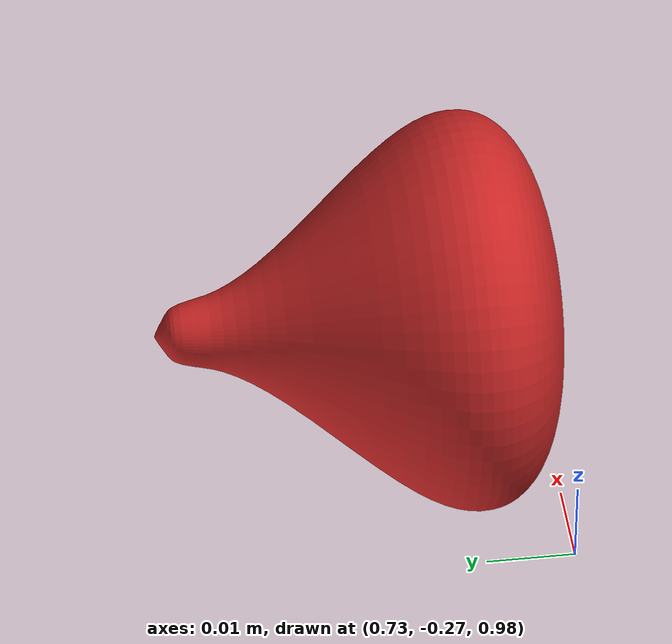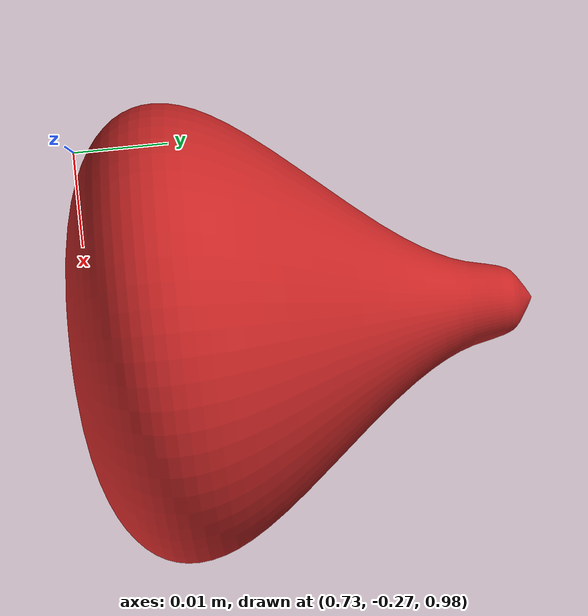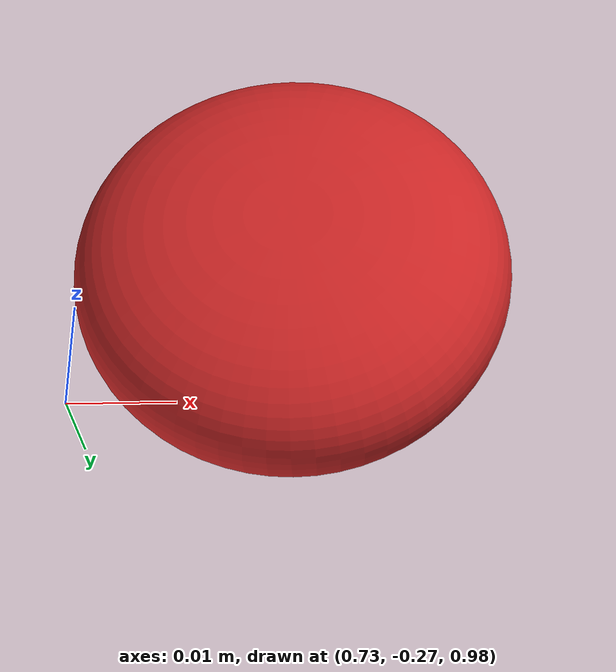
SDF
<?xml version="1.0"?>
<sdf version='1.6'>
  <model name='onion'>
    <!-- Set initial pose for the onion model -->
    <pose frame=''>0.75 -0.25 1.0 0 0 0</pose> <!-- x, y, z and roll, pitch, yaw -->

    <link name='base_link'>
      <pose frame=''>0 0 0 0 0 0</pose> <!-- Local pose within the model -->
      <inertial>
        <pose frame=''>0 0 0 0 0 0</pose>
        <mass>0.005</mass>	<!-- From 0.14kg to 0.005kg -->
        <inertia>
          <ixx>0.08333</ixx>
          <ixy>0</ixy>
          <ixz>0</ixz>
          <iyy>0.08333</iyy>
          <iyz>0</iyz>
          <izz>0.07780</izz>
        </inertia>
      </inertial>
      <collision name='base_link_fixed_joint_lump__box_collision_collision'>
        <pose frame=''>0 0 0 0 0 0</pose>
        <geometry>
          <!-- Commented out mesh collision, using sphere for collision geometry -->
          <sphere>
            <radius>0.025</radius>
          </sphere>
        </geometry>
      </collision>
      <visual name='base_link_visual'>
        <pose frame=''>0 0 0 0 0 0</pose>
        <geometry>
          <mesh>
            <scale>0.5 0.5 0.5</scale>
            <uri>/home/divyam/dual_ur_ws/src/ur_two/meshes/custom_onion.dae</uri>
          </mesh>
        </geometry>
        <material>
          <script>
            <uri>file://media/materials/scripts/gazebo.material</uri>
            <name>Gazebo/Red</name>
          </script>
        </material>
      </visual>
      <gravity>1</gravity>
      <velocity_decay/>
      <self_collide>0</self_collide>
    </link>
    <plugin name="model_push" filename="libmodel_push.so"/>
  </model>
</sdf>
